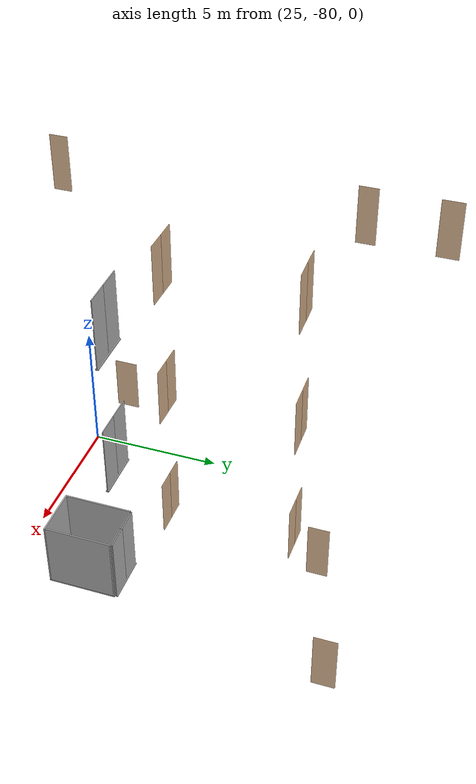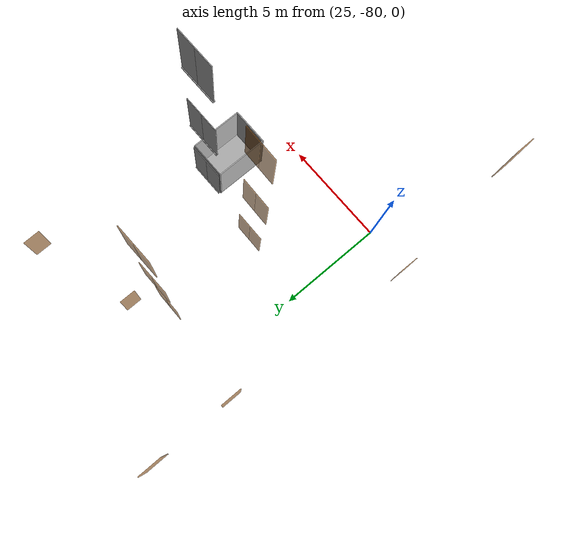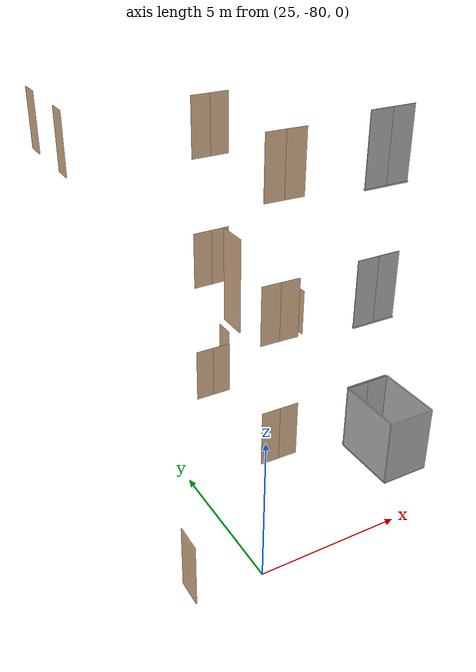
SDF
<sdf version="1.7">
 <world name="sim_world">
  <model name="p20">
   <pose>28.24031880536875 -70.70868270569765 0.0 0 0 3.141592653589793</pose>
   <link name="right">
    <pose>0.3696779354685793 0 1.11 0 0 0</pose>
    <visual name="right_visual">
     <geometry><box><size>0.7293558709371586 0.03 2.2</size></box></geometry>
     <material>
      <ambient>0.5 0.25 0 0.6</ambient>
      <diffuse>0.5 0.25 0 0.6</diffuse>
      <pbr><metal><metalness>0.0</metalness></metal></pbr>
     </material>
    </visual>
    <collision name="right_collision">
     <geometry><box><size>0.7293558709371586 0.03 2.2</size></box></geometry>
     <surface><contact><collide_bitmask>0x02</collide_bitmask></contact></surface>
    </collision>
    <inertial>
     <mass>50.0</mass>
     <inertia><ixx>20.17041666666667</ixx><iyy>22.38316661029376</iyy><izz>2.2202499436270884</izz></inertia>
    </inertial>
   </link>
   <joint name="right_joint" type="revolute">
    <parent>world</parent>
    <child>right</child>
    <axis><xyz>0 0 -1</xyz><limit><lower>0</lower><upper>1.57</upper></limit></axis>
    <pose>0.3696779354685793 0 0 0 0 0</pose>
   </joint>
   <link name="left">
    <pose>-0.3696779354685793 0 1.11 0 0 0</pose>
    <visual name="left_visual">
     <geometry><box><size>0.7293558709371586 0.03 2.2</size></box></geometry>
     <material>
      <ambient>0.5 0.25 0 0.6</ambient>
      <diffuse>0.5 0.25 0 0.6</diffuse>
      <pbr><metal><metalness>0.0</metalness></metal></pbr>
     </material>
    </visual>
    <collision name="left_collision">
     <geometry><box><size>0.7293558709371586 0.03 2.2</size></box></geometry>
     <surface><contact><collide_bitmask>0x02</collide_bitmask></contact></surface>
    </collision>
    <inertial>
     <mass>50.0</mass>
     <inertia><ixx>20.17041666666667</ixx><iyy>22.38316661029376</iyy><izz>2.2202499436270884</izz></inertia>
    </inertial>
   </link>
   <joint name="left_joint" type="revolute">
    <parent>world</parent>
    <child>left</child>
    <axis><xyz>0 0 -1</xyz><limit><lower>-1.57</lower><upper>0</upper></limit></axis>
    <pose>-0.3696779354685793 0 0 0 0 0</pose>
   </joint>
   <plugin name="register_component" filename="libregister_component.so">
    <component name="Door">
     <v_max_door>0.5</v_max_door>
     <a_max_door>0.3</a_max_door>
     <a_nom_door>0.15</a_nom_door>
     <dx_min_door>0.01</dx_min_door>
     <f_max_door>500.0</f_max_door>
     <ros_interface>true</ros_interface>
     <door name="p20" type="DoubleSwingDoor" left_joint_name="left_joint" right_joint_name="right_joint"/>
    </component>
   </plugin>
  </model>
  <model name="p21">
   <pose>29.38755147995617 -69.5233733815295 0.0 0 0 1.5707963267948966</pose>
   <link name="right">
    <pose>0 0 1.11 0 0 0</pose>
    <visual name="right_visual">
     <geometry><box><size>0.7783988622559315 0.03 2.2</size></box></geometry>
     <material>
      <ambient>0.5 0.25 0 0.6</ambient>
      <diffuse>0.5 0.25 0 0.6</diffuse>
      <pbr><metal><metalness>0.0</metalness></metal></pbr>
     </material>
    </visual>
    <collision name="right_collision">
     <geometry><box><size>0.7783988622559315 0.03 2.2</size></box></geometry>
     <surface><contact><collide_bitmask>0x02</collide_bitmask></contact></surface>
    </collision>
    <inertial>
     <mass>50.0</mass>
     <inertia><ixx>20.17041666666667</ixx><iyy>22.69126995317221</iyy><izz>2.528353286505536</izz></inertia>
    </inertial>
   </link>
   <joint name="right_joint" type="revolute">
    <parent>world</parent>
    <child>right</child>
    <axis><xyz>0 0 -1</xyz><limit><lower>0</lower><upper>1.57</upper></limit></axis>
    <pose>0.39419943112796574 0 0 0 0 0</pose>
   </joint>
   <plugin name="register_component" filename="libregister_component.so">
    <component name="Door">
     <v_max_door>0.5</v_max_door>
     <a_max_door>0.3</a_max_door>
     <a_nom_door>0.15</a_nom_door>
     <dx_min_door>0.01</dx_min_door>
     <f_max_door>500.0</f_max_door>
     <ros_interface>true</ros_interface>
     <door name="p21" type="SwingDoor" left_joint_name="empty_joint" right_joint_name="right_joint"/>
    </component>
   </plugin>
  </model>
  <model name="p22">
   <pose>34.09194542383932 -67.93720926787358 0.0 0 0 1.5769575132323284</pose>
   <link name="right">
    <pose>0 0 1.11 0 0 0</pose>
    <visual name="right_visual">
     <geometry><box><size>0.8195467216974657 0.03 2.2</size></box></geometry>
     <material>
      <ambient>0.5 0.25 0 0.6</ambient>
      <diffuse>0.5 0.25 0 0.6</diffuse>
      <pbr><metal><metalness>0.0</metalness></metal></pbr>
     </material>
    </visual>
    <collision name="right_collision">
     <geometry><box><size>0.8195467216974657 0.03 2.2</size></box></geometry>
     <surface><contact><collide_bitmask>0x02</collide_bitmask></contact></surface>
    </collision>
    <inertial>
     <mass>50.0</mass>
     <inertia><ixx>20.17041666666667</ixx><iyy>22.96523678768777</iyy><izz>2.8023201210210975</izz></inertia>
    </inertial>
   </link>
   <joint name="right_joint" type="revolute">
    <parent>world</parent>
    <child>right</child>
    <axis><xyz>0 0 1</xyz><limit><lower>0</lower><upper>1.57</upper></limit></axis>
    <pose>0.41477336084873284 0 0 0 0 0</pose>
   </joint>
   <plugin name="register_component" filename="libregister_component.so">
    <component name="Door">
     <v_max_door>0.5</v_max_door>
     <a_max_door>0.3</a_max_door>
     <a_nom_door>0.15</a_nom_door>
     <dx_min_door>0.01</dx_min_door>
     <f_max_door>500.0</f_max_door>
     <ros_interface>true</ros_interface>
     <door name="p22" type="SwingDoor" left_joint_name="empty_joint" right_joint_name="right_joint"/>
    </component>
   </plugin>
  </model>
  <model name="p30">
   <pose>28.38806998311163 -75.47850804420615 0.0 0 0 -0.00943139745782586</pose>
   <link name="right">
    <pose>0.36697211509706684 0 1.11 0 0 0</pose>
    <visual name="right_visual">
     <geometry><box><size>0.7239442301941337 0.03 2.2</size></box></geometry>
     <material>
      <ambient>0.5 0.25 0 0.6</ambient>
      <diffuse>0.5 0.25 0 0.6</diffuse>
      <pbr><metal><metalness>0.0</metalness></metal></pbr>
     </material>
    </visual>
    <collision name="right_collision">
     <geometry><box><size>0.7239442301941337 0.03 2.2</size></box></geometry>
     <surface><contact><collide_bitmask>0x02</collide_bitmask></contact></surface>
    </collision>
    <inertial>
     <mass>50.0</mass>
     <inertia><ixx>20.17041666666667</ixx><iyy>22.350396868464074</iyy><izz>2.1874802017974035</izz></inertia>
    </inertial>
   </link>
   <joint name="right_joint" type="revolute">
    <parent>world</parent>
    <child>right</child>
    <axis><xyz>0 0 -1</xyz><limit><lower>0</lower><upper>1.57</upper></limit></axis>
    <pose>0.36697211509706684 0 0 0 0 0</pose>
   </joint>
   <link name="left">
    <pose>-0.36697211509706684 0 1.11 0 0 0</pose>
    <visual name="left_visual">
     <geometry><box><size>0.7239442301941337 0.03 2.2</size></box></geometry>
     <material>
      <ambient>0.5 0.25 0 0.6</ambient>
      <diffuse>0.5 0.25 0 0.6</diffuse>
      <pbr><metal><metalness>0.0</metalness></metal></pbr>
     </material>
    </visual>
    <collision name="left_collision">
     <geometry><box><size>0.7239442301941337 0.03 2.2</size></box></geometry>
     <surface><contact><collide_bitmask>0x02</collide_bitmask></contact></surface>
    </collision>
    <inertial>
     <mass>50.0</mass>
     <inertia><ixx>20.17041666666667</ixx><iyy>22.350396868464074</iyy><izz>2.1874802017974035</izz></inertia>
    </inertial>
   </link>
   <joint name="left_joint" type="revolute">
    <parent>world</parent>
    <child>left</child>
    <axis><xyz>0 0 -1</xyz><limit><lower>-1.57</lower><upper>0</upper></limit></axis>
    <pose>-0.36697211509706684 0 0 0 0 0</pose>
   </joint>
   <plugin name="register_component" filename="libregister_component.so">
    <component name="Door">
     <v_max_door>0.5</v_max_door>
     <a_max_door>0.3</a_max_door>
     <a_nom_door>0.15</a_nom_door>
     <dx_min_door>0.01</dx_min_door>
     <f_max_door>500.0</f_max_door>
     <ros_interface>true</ros_interface>
     <door name="p30" type="DoubleSwingDoor" left_joint_name="left_joint" right_joint_name="right_joint"/>
    </component>
   </plugin>
  </model>
  <model name="p31">
   <pose>22.722648958549392 -79.61439661047086 0.0 0 0 1.5606615386686578</pose>
   <link name="right">
    <pose>0 0 1.11 0 0 0</pose>
    <visual name="right_visual">
     <geometry><box><size>0.904330978076463 0.03 2.2</size></box></geometry>
     <material>
      <ambient>0.5 0.25 0 0.6</ambient>
      <diffuse>0.5 0.25 0 0.6</diffuse>
      <pbr><metal><metalness>0.0</metalness></metal></pbr>
     </material>
    </visual>
    <collision name="right_collision">
     <geometry><box><size>0.904330978076463 0.03 2.2</size></box></geometry>
     <surface><contact><collide_bitmask>0x02</collide_bitmask></contact></surface>
    </collision>
    <inertial>
     <mass>50.0</mass>
     <inertia><ixx>20.17041666666667</ixx><iyy>23.574227157953054</iyy><izz>3.4113104912863847</izz></inertia>
    </inertial>
   </link>
   <joint name="right_joint" type="revolute">
    <parent>world</parent>
    <child>right</child>
    <axis><xyz>0 0 -1</xyz><limit><lower>0</lower><upper>1.57</upper></limit></axis>
    <pose>0.4571654890382315 0 0 0 0 0</pose>
   </joint>
   <plugin name="register_component" filename="libregister_component.so">
    <component name="Door">
     <v_max_door>0.5</v_max_door>
     <a_max_door>0.3</a_max_door>
     <a_nom_door>0.15</a_nom_door>
     <dx_min_door>0.01</dx_min_door>
     <f_max_door>500.0</f_max_door>
     <ros_interface>true</ros_interface>
     <door name="p31" type="SwingDoor" left_joint_name="empty_joint" right_joint_name="right_joint"/>
    </component>
   </plugin>
  </model>
  <model name="puerta30">
   <pose>28.253965480010393 -70.6309433870361 5.0 0 0 -3.119041826627135</pose>
   <link name="right">
    <pose>0.3698967666298497 0 1.11 0 0 0</pose>
    <visual name="right_visual">
     <geometry><box><size>0.7297935332596994 0.03 2.2</size></box></geometry>
     <material>
      <ambient>0.5 0.25 0 0.6</ambient>
      <diffuse>0.5 0.25 0 0.6</diffuse>
      <pbr><metal><metalness>0.0</metalness></metal></pbr>
     </material>
    </visual>
    <collision name="right_collision">
     <geometry><box><size>0.7297935332596994 0.03 2.2</size></box></geometry>
     <surface><contact><collide_bitmask>0x02</collide_bitmask></contact></surface>
    </collision>
    <inertial>
     <mass>50.0</mass>
     <inertia><ixx>20.17041666666667</ixx><iyy>22.385827504948654</iyy><izz>2.2229108382819835</izz></inertia>
    </inertial>
   </link>
   <joint name="right_joint" type="revolute">
    <parent>world</parent>
    <child>right</child>
    <axis><xyz>0 0 -1</xyz><limit><lower>0</lower><upper>1.57</upper></limit></axis>
    <pose>0.3698967666298497 0 0 0 0 0</pose>
   </joint>
   <link name="left">
    <pose>-0.3698967666298497 0 1.11 0 0 0</pose>
    <visual name="left_visual">
     <geometry><box><size>0.7297935332596994 0.03 2.2</size></box></geometry>
     <material>
      <ambient>0.5 0.25 0 0.6</ambient>
      <diffuse>0.5 0.25 0 0.6</diffuse>
      <pbr><metal><metalness>0.0</metalness></metal></pbr>
     </material>
    </visual>
    <collision name="left_collision">
     <geometry><box><size>0.7297935332596994 0.03 2.2</size></box></geometry>
     <surface><contact><collide_bitmask>0x02</collide_bitmask></contact></surface>
    </collision>
    <inertial>
     <mass>50.0</mass>
     <inertia><ixx>20.17041666666667</ixx><iyy>22.385827504948654</iyy><izz>2.2229108382819835</izz></inertia>
    </inertial>
   </link>
   <joint name="left_joint" type="revolute">
    <parent>world</parent>
    <child>left</child>
    <axis><xyz>0 0 -1</xyz><limit><lower>-1.57</lower><upper>0</upper></limit></axis>
    <pose>-0.3698967666298497 0 0 0 0 0</pose>
   </joint>
   <plugin name="register_component" filename="libregister_component.so">
    <component name="Door">
     <v_max_door>0.5</v_max_door>
     <a_max_door>0.3</a_max_door>
     <a_nom_door>0.15</a_nom_door>
     <dx_min_door>0.01</dx_min_door>
     <f_max_door>500.0</f_max_door>
     <ros_interface>true</ros_interface>
     <door name="puerta30" type="DoubleSwingDoor" left_joint_name="left_joint" right_joint_name="right_joint"/>
    </component>
   </plugin>
  </model>
  <model name="puerta31">
   <pose>28.23796392504 -75.49561463981098 5.0 0 0 -0.024892835621303313</pose>
   <link name="right">
    <pose>0.3614109252643454 0 1.11 0 0 0</pose>
    <visual name="right_visual">
     <geometry><box><size>0.7128218505286907 0.03 2.2</size></box></geometry>
     <material>
      <ambient>0.5 0.25 0 0.6</ambient>
      <diffuse>0.5 0.25 0 0.6</diffuse>
      <pbr><metal><metalness>0.0</metalness></metal></pbr>
     </material>
    </visual>
    <collision name="right_collision">
     <geometry><box><size>0.7128218505286907 0.03 2.2</size></box></geometry>
     <surface><contact><collide_bitmask>0x02</collide_bitmask></contact></surface>
    </collision>
    <inertial>
     <mass>50.0</mass>
     <inertia><ixx>20.17041666666667</ixx><iyy>22.28381246079645</iyy><izz>2.1208957941297797</izz></inertia>
    </inertial>
   </link>
   <joint name="right_joint" type="revolute">
    <parent>world</parent>
    <child>right</child>
    <axis><xyz>0 0 -1</xyz><limit><lower>0</lower><upper>1.57</upper></limit></axis>
    <pose>0.3614109252643454 0 0 0 0 0</pose>
   </joint>
   <link name="left">
    <pose>-0.3614109252643454 0 1.11 0 0 0</pose>
    <visual name="left_visual">
     <geometry><box><size>0.7128218505286907 0.03 2.2</size></box></geometry>
     <material>
      <ambient>0.5 0.25 0 0.6</ambient>
      <diffuse>0.5 0.25 0 0.6</diffuse>
      <pbr><metal><metalness>0.0</metalness></metal></pbr>
     </material>
    </visual>
    <collision name="left_collision">
     <geometry><box><size>0.7128218505286907 0.03 2.2</size></box></geometry>
     <surface><contact><collide_bitmask>0x02</collide_bitmask></contact></surface>
    </collision>
    <inertial>
     <mass>50.0</mass>
     <inertia><ixx>20.17041666666667</ixx><iyy>22.28381246079645</iyy><izz>2.1208957941297797</izz></inertia>
    </inertial>
   </link>
   <joint name="left_joint" type="revolute">
    <parent>world</parent>
    <child>left</child>
    <axis><xyz>0 0 -1</xyz><limit><lower>-1.57</lower><upper>0</upper></limit></axis>
    <pose>-0.3614109252643454 0 0 0 0 0</pose>
   </joint>
   <plugin name="register_component" filename="libregister_component.so">
    <component name="Door">
     <v_max_door>0.5</v_max_door>
     <a_max_door>0.3</a_max_door>
     <a_nom_door>0.15</a_nom_door>
     <dx_min_door>0.01</dx_min_door>
     <f_max_door>500.0</f_max_door>
     <ros_interface>true</ros_interface>
     <door name="puerta31" type="DoubleSwingDoor" left_joint_name="left_joint" right_joint_name="right_joint"/>
    </component>
   </plugin>
  </model>
  <model name="puerta116">
   <pose>28.253852579309445 -70.63140079941434 10.0 0 0 -3.119040116150256</pose>
   <link name="right">
    <pose>0.3699010898375656 0 1.11 0 0 0</pose>
    <visual name="right_visual">
     <geometry><box><size>0.7298021796751312 0.03 2.2</size></box></geometry>
     <material>
      <ambient>0.5 0.25 0 0.6</ambient>
      <diffuse>0.5 0.25 0 0.6</diffuse>
      <pbr><metal><metalness>0.0</metalness></metal></pbr>
     </material>
    </visual>
    <collision name="right_collision">
     <geometry><box><size>0.7298021796751312 0.03 2.2</size></box></geometry>
     <surface><contact><collide_bitmask>0x02</collide_bitmask></contact></surface>
    </collision>
    <inertial>
     <mass>50.0</mass>
     <inertia><ixx>20.17041666666667</ixx><iyy>22.385880089410723</iyy><izz>2.222963422744052</izz></inertia>
    </inertial>
   </link>
   <joint name="right_joint" type="revolute">
    <parent>world</parent>
    <child>right</child>
    <axis><xyz>0 0 -1</xyz><limit><lower>0</lower><upper>1.57</upper></limit></axis>
    <pose>0.3699010898375656 0 0 0 0 0</pose>
   </joint>
   <link name="left">
    <pose>-0.3699010898375656 0 1.11 0 0 0</pose>
    <visual name="left_visual">
     <geometry><box><size>0.7298021796751312 0.03 2.2</size></box></geometry>
     <material>
      <ambient>0.5 0.25 0 0.6</ambient>
      <diffuse>0.5 0.25 0 0.6</diffuse>
      <pbr><metal><metalness>0.0</metalness></metal></pbr>
     </material>
    </visual>
    <collision name="left_collision">
     <geometry><box><size>0.7298021796751312 0.03 2.2</size></box></geometry>
     <surface><contact><collide_bitmask>0x02</collide_bitmask></contact></surface>
    </collision>
    <inertial>
     <mass>50.0</mass>
     <inertia><ixx>20.17041666666667</ixx><iyy>22.385880089410723</iyy><izz>2.222963422744052</izz></inertia>
    </inertial>
   </link>
   <joint name="left_joint" type="revolute">
    <parent>world</parent>
    <child>left</child>
    <axis><xyz>0 0 -1</xyz><limit><lower>-1.57</lower><upper>0</upper></limit></axis>
    <pose>-0.3699010898375656 0 0 0 0 0</pose>
   </joint>
   <plugin name="register_component" filename="libregister_component.so">
    <component name="Door">
     <v_max_door>0.5</v_max_door>
     <a_max_door>0.3</a_max_door>
     <a_nom_door>0.15</a_nom_door>
     <dx_min_door>0.01</dx_min_door>
     <f_max_door>500.0</f_max_door>
     <ros_interface>true</ros_interface>
     <door name="puerta116" type="DoubleSwingDoor" left_joint_name="left_joint" right_joint_name="right_joint"/>
    </component>
   </plugin>
  </model>
  <model name="puerta117">
   <pose>28.237859158324174 -75.49612893591424 10.0 0 0 -0.02489112514442452</pose>
   <link name="right">
    <pose>0.3614151492928882 0 1.11 0 0 0</pose>
    <visual name="right_visual">
     <geometry><box><size>0.7128302985857764 0.03 2.2</size></box></geometry>
     <material>
      <ambient>0.5 0.25 0 0.6</ambient>
      <diffuse>0.5 0.25 0 0.6</diffuse>
      <pbr><metal><metalness>0.0</metalness></metal></pbr>
     </material>
    </visual>
    <collision name="right_collision">
     <geometry><box><size>0.7128302985857764 0.03 2.2</size></box></geometry>
     <surface><contact><collide_bitmask>0x02</collide_bitmask></contact></surface>
    </collision>
    <inertial>
     <mass>50.0</mass>
     <inertia><ixx>20.17041666666667</ixx><iyy>22.2838626440912</iyy><izz>2.12094597742453</izz></inertia>
    </inertial>
   </link>
   <joint name="right_joint" type="revolute">
    <parent>world</parent>
    <child>right</child>
    <axis><xyz>0 0 -1</xyz><limit><lower>0</lower><upper>1.57</upper></limit></axis>
    <pose>0.3614151492928882 0 0 0 0 0</pose>
   </joint>
   <link name="left">
    <pose>-0.3614151492928882 0 1.11 0 0 0</pose>
    <visual name="left_visual">
     <geometry><box><size>0.7128302985857764 0.03 2.2</size></box></geometry>
     <material>
      <ambient>0.5 0.25 0 0.6</ambient>
      <diffuse>0.5 0.25 0 0.6</diffuse>
      <pbr><metal><metalness>0.0</metalness></metal></pbr>
     </material>
    </visual>
    <collision name="left_collision">
     <geometry><box><size>0.7128302985857764 0.03 2.2</size></box></geometry>
     <surface><contact><collide_bitmask>0x02</collide_bitmask></contact></surface>
    </collision>
    <inertial>
     <mass>50.0</mass>
     <inertia><ixx>20.17041666666667</ixx><iyy>22.2838626440912</iyy><izz>2.12094597742453</izz></inertia>
    </inertial>
   </link>
   <joint name="left_joint" type="revolute">
    <parent>world</parent>
    <child>left</child>
    <axis><xyz>0 0 -1</xyz><limit><lower>-1.57</lower><upper>0</upper></limit></axis>
    <pose>-0.3614151492928882 0 0 0 0 0</pose>
   </joint>
   <plugin name="register_component" filename="libregister_component.so">
    <component name="Door">
     <v_max_door>0.5</v_max_door>
     <a_max_door>0.3</a_max_door>
     <a_nom_door>0.15</a_nom_door>
     <dx_min_door>0.01</dx_min_door>
     <f_max_door>500.0</f_max_door>
     <ros_interface>true</ros_interface>
     <door name="puerta117" type="DoubleSwingDoor" left_joint_name="left_joint" right_joint_name="right_joint"/>
    </component>
   </plugin>
  </model>
  <model name="puerta191">
   <pose>23.09528756313445 -70.01654095917024 10.0 0 0 -1.5706415577171917</pose>
   <link name="right">
    <pose>0 0 1.11 0 0 0</pose>
    <visual name="right_visual">
     <geometry><box><size>0.707458572029589 0.03 2.2</size></box></geometry>
     <material>
      <ambient>0.5 0.25 0 0.6</ambient>
      <diffuse>0.5 0.25 0 0.6</diffuse>
      <pbr><metal><metalness>0.0</metalness></metal></pbr>
     </material>
    </visual>
    <collision name="right_collision">
     <geometry><box><size>0.707458572029589 0.03 2.2</size></box></geometry>
     <surface><contact><collide_bitmask>0x02</collide_bitmask></contact></surface>
    </collision>
    <inertial>
     <mass>50.0</mass>
     <inertia><ixx>20.17041666666667</ixx><iyy>22.252073463075607</iyy><izz>2.089156796408938</izz></inertia>
    </inertial>
   </link>
   <joint name="right_joint" type="revolute">
    <parent>world</parent>
    <child>right</child>
    <axis><xyz>0 0 1</xyz><limit><lower>0</lower><upper>1.57</upper></limit></axis>
    <pose>0.3587292860147945 0 0 0 0 0</pose>
   </joint>
   <plugin name="register_component" filename="libregister_component.so">
    <component name="Door">
     <v_max_door>0.5</v_max_door>
     <a_max_door>0.3</a_max_door>
     <a_nom_door>0.15</a_nom_door>
     <dx_min_door>0.01</dx_min_door>
     <f_max_door>500.0</f_max_door>
     <ros_interface>true</ros_interface>
     <door name="puerta191" type="SwingDoor" left_joint_name="empty_joint" right_joint_name="right_joint"/>
    </component>
   </plugin>
  </model>
  <model name="puerta192">
   <pose>23.094842041128867 -67.13791682679607 10.0 0 0 -1.5706415577171886</pose>
   <link name="right">
    <pose>0 0 1.11 0 0 0</pose>
    <visual name="right_visual">
     <geometry><box><size>0.8067808679963837 0.03 2.2</size></box></geometry>
     <material>
      <ambient>0.5 0.25 0 0.6</ambient>
      <diffuse>0.5 0.25 0 0.6</diffuse>
      <pbr><metal><metalness>0.0</metalness></metal></pbr>
     </material>
    </visual>
    <collision name="right_collision">
     <geometry><box><size>0.8067808679963837 0.03 2.2</size></box></geometry>
     <surface><contact><collide_bitmask>0x02</collide_bitmask></contact></surface>
    </collision>
    <inertial>
     <mass>50.0</mass>
     <inertia><ixx>20.17041666666667</ixx><iyy>22.878730704020832</iyy><izz>2.71581403735416</izz></inertia>
    </inertial>
   </link>
   <joint name="right_joint" type="revolute">
    <parent>world</parent>
    <child>right</child>
    <axis><xyz>0 0 1</xyz><limit><lower>0</lower><upper>1.57</upper></limit></axis>
    <pose>0.40839043399819186 0 0 0 0 0</pose>
   </joint>
   <plugin name="register_component" filename="libregister_component.so">
    <component name="Door">
     <v_max_door>0.5</v_max_door>
     <a_max_door>0.3</a_max_door>
     <a_nom_door>0.15</a_nom_door>
     <dx_min_door>0.01</dx_min_door>
     <f_max_door>500.0</f_max_door>
     <ros_interface>true</ros_interface>
     <door name="puerta192" type="SwingDoor" left_joint_name="empty_joint" right_joint_name="right_joint"/>
    </component>
   </plugin>
  </model>
  <model name="puerta195">
   <pose>23.092152731131623 -81.49707886946723 10.0 0 0 -1.5699500383705802</pose>
   <link name="right">
    <pose>0 0 1.11 0 0 0</pose>
    <visual name="right_visual">
     <geometry><box><size>0.6970575697927808 0.03 2.2</size></box></geometry>
     <material>
      <ambient>0.5 0.25 0 0.6</ambient>
      <diffuse>0.5 0.25 0 0.6</diffuse>
      <pbr><metal><metalness>0.0</metalness></metal></pbr>
     </material>
    </visual>
    <collision name="right_collision">
     <geometry><box><size>0.6970575697927808 0.03 2.2</size></box></geometry>
     <surface><contact><collide_bitmask>0x02</collide_bitmask></contact></surface>
    </collision>
    <inertial>
     <mass>50.0</mass>
     <inertia><ixx>20.17041666666667</ixx><iyy>22.191205231689242</iyy><izz>2.028288565022573</izz></inertia>
    </inertial>
   </link>
   <joint name="right_joint" type="revolute">
    <parent>world</parent>
    <child>right</child>
    <axis><xyz>0 0 1</xyz><limit><lower>0</lower><upper>1.57</upper></limit></axis>
    <pose>0.3535287848963904 0 0 0 0 0</pose>
   </joint>
   <plugin name="register_component" filename="libregister_component.so">
    <component name="Door">
     <v_max_door>0.5</v_max_door>
     <a_max_door>0.3</a_max_door>
     <a_nom_door>0.15</a_nom_door>
     <dx_min_door>0.01</dx_min_door>
     <f_max_door>500.0</f_max_door>
     <ros_interface>true</ros_interface>
     <door name="puerta195" type="SwingDoor" left_joint_name="empty_joint" right_joint_name="right_joint"/>
    </component>
   </plugin>
  </model>
  <model name="ShaftDoor_left_lab_lift_L0_left_lab_lift_door">
   <pose>31.838505760783477 -75.86955478651261 0.0 0 0 0.0</pose>
   <link name="right_door">
    <pose>0.425 0 1.25 0 0 0</pose>
    <visual name="right_door_visual">
     <geometry><box><size>0.85 0.03 2.5</size></box></geometry>
     <material>
      <ambient>0.5 0.5 0.5 1</ambient>
      <diffuse>0.7 0.7 0.7 1</diffuse>
      <specular>0.6 0.6 0.6 1</specular>
      <emissive>0.1 0.1 0.1 1</emissive>
     </material>
    </visual>
    <collision name="right_door_collision">
     <geometry><box><size>0.85 0.03 2.5</size></box></geometry>
     <surface><contact><collide_bitmask>0x02</collide_bitmask></contact></surface>
    </collision>
   </link>
   <link name="left_door">
    <pose>-0.425 0 1.25 0 0 0</pose>
    <visual name="left_door_visual">
     <geometry><box><size>0.85 0.03 2.5</size></box></geometry>
     <material>
      <ambient>0.5 0.5 0.5 1</ambient>
      <diffuse>0.7 0.7 0.7 1</diffuse>
      <specular>0.6 0.6 0.6 1</specular>
      <emissive>0.1 0.1 0.1 1</emissive>
     </material>
    </visual>
    <collision name="left_door_collision">
     <geometry><box><size>0.85 0.03 2.5</size></box></geometry>
     <surface><contact><collide_bitmask>0x02</collide_bitmask></contact></surface>
    </collision>
   </link>
   <joint name="right_joint" type="prismatic">
    <parent>world</parent>
    <child>right_door</child>
    <axis><xyz>1 0 0</xyz><limit><lower>0</lower><upper>0.85</upper></limit></axis>
   </joint>
   <joint name="left_joint" type="prismatic">
    <parent>world</parent>
    <child>left_door</child>
    <axis><xyz>1 0 0</xyz><limit><lower>-0.85</lower><upper>0</upper></limit></axis>
   </joint>
   <link name="ramp">
    <pose>0 0 -0.025 0 0 0</pose>
    <visual name="ramp_visual">
     <geometry><box><size>1.7 0.1 0.05</size></box></geometry>
     <material>
      <ambient>0.5 0.5 0.5 1</ambient>
      <diffuse>0.7 0.7 0.7 1</diffuse>
      <specular>0.6 0.6 0.6 1</specular>
      <emissive>0.1 0.1 0.1 1</emissive>
     </material>
    </visual>
    <collision name="ramp_collision">
     <geometry><box><size>1.7 0.1 0.05</size></box></geometry>
     <surface><contact><collide_bitmask>0x02</collide_bitmask></contact></surface>
    </collision>
   </link>
   <joint name="ramp_joint" type="fixed"><parent>world</parent><child>ramp</child></joint>
   <plugin name="register_component" filename="libregister_component.so">
    <component name="Door">
     <v_max_door>0.3</v_max_door>
     <a_max_door>0.2</a_max_door>
     <a_nom_door>0.1</a_nom_door>
     <dx_min_door>0.0001</dx_min_door>
     <f_max_door>35.0</f_max_door>
     <door left_joint_name="left_joint" name="ShaftDoor_left_lab_lift_L0_left_lab_lift_door" right_joint_name="right_joint" type="DoubleSlidingDoor"/>
    </component>
   </plugin>
  </model>
  <model name="ShaftDoor_left_lab_lift_L1_left_lab_lift_door">
   <pose>31.838505760783477 -75.86955478651261 5.0 0 0 0.0</pose>
   <link name="right_door">
    <pose>0.425 0 1.25 0 0 0</pose>
    <visual name="right_door_visual">
     <geometry><box><size>0.85 0.03 2.5</size></box></geometry>
     <material>
      <ambient>0.5 0.5 0.5 1</ambient>
      <diffuse>0.7 0.7 0.7 1</diffuse>
      <specular>0.6 0.6 0.6 1</specular>
      <emissive>0.1 0.1 0.1 1</emissive>
     </material>
    </visual>
    <collision name="right_door_collision">
     <geometry><box><size>0.85 0.03 2.5</size></box></geometry>
     <surface><contact><collide_bitmask>0x02</collide_bitmask></contact></surface>
    </collision>
   </link>
   <link name="left_door">
    <pose>-0.425 0 1.25 0 0 0</pose>
    <visual name="left_door_visual">
     <geometry><box><size>0.85 0.03 2.5</size></box></geometry>
     <material>
      <ambient>0.5 0.5 0.5 1</ambient>
      <diffuse>0.7 0.7 0.7 1</diffuse>
      <specular>0.6 0.6 0.6 1</specular>
      <emissive>0.1 0.1 0.1 1</emissive>
     </material>
    </visual>
    <collision name="left_door_collision">
     <geometry><box><size>0.85 0.03 2.5</size></box></geometry>
     <surface><contact><collide_bitmask>0x02</collide_bitmask></contact></surface>
    </collision>
   </link>
   <joint name="right_joint" type="prismatic">
    <parent>world</parent>
    <child>right_door</child>
    <axis><xyz>1 0 0</xyz><limit><lower>0</lower><upper>0.85</upper></limit></axis>
   </joint>
   <joint name="left_joint" type="prismatic">
    <parent>world</parent>
    <child>left_door</child>
    <axis><xyz>1 0 0</xyz><limit><lower>-0.85</lower><upper>0</upper></limit></axis>
   </joint>
   <link name="ramp">
    <pose>0 0 -0.025 0 0 0</pose>
    <visual name="ramp_visual">
     <geometry><box><size>1.7 0.1 0.05</size></box></geometry>
     <material>
      <ambient>0.5 0.5 0.5 1</ambient>
      <diffuse>0.7 0.7 0.7 1</diffuse>
      <specular>0.6 0.6 0.6 1</specular>
      <emissive>0.1 0.1 0.1 1</emissive>
     </material>
    </visual>
    <collision name="ramp_collision">
     <geometry><box><size>1.7 0.1 0.05</size></box></geometry>
     <surface><contact><collide_bitmask>0x02</collide_bitmask></contact></surface>
    </collision>
   </link>
   <joint name="ramp_joint" type="fixed"><parent>world</parent><child>ramp</child></joint>
   <plugin name="register_component" filename="libregister_component.so">
    <component name="Door">
     <v_max_door>0.3</v_max_door>
     <a_max_door>0.2</a_max_door>
     <a_nom_door>0.1</a_nom_door>
     <dx_min_door>0.0001</dx_min_door>
     <f_max_door>35.0</f_max_door>
     <door left_joint_name="left_joint" name="ShaftDoor_left_lab_lift_L1_left_lab_lift_door" right_joint_name="right_joint" type="DoubleSlidingDoor"/>
    </component>
   </plugin>
  </model>
  <model name="ShaftDoor_left_lab_lift_L2_left_lab_lift_door">
   <pose>31.838505760783477 -75.86955478651261 10.0 0 0 0.0</pose>
   <link name="right_door">
    <pose>0.425 0 1.25 0 0 0</pose>
    <visual name="right_door_visual">
     <geometry><box><size>0.85 0.03 2.5</size></box></geometry>
     <material>
      <ambient>0.5 0.5 0.5 1</ambient>
      <diffuse>0.7 0.7 0.7 1</diffuse>
      <specular>0.6 0.6 0.6 1</specular>
      <emissive>0.1 0.1 0.1 1</emissive>
     </material>
    </visual>
    <collision name="right_door_collision">
     <geometry><box><size>0.85 0.03 2.5</size></box></geometry>
     <surface><contact><collide_bitmask>0x02</collide_bitmask></contact></surface>
    </collision>
   </link>
   <link name="left_door">
    <pose>-0.425 0 1.25 0 0 0</pose>
    <visual name="left_door_visual">
     <geometry><box><size>0.85 0.03 2.5</size></box></geometry>
     <material>
      <ambient>0.5 0.5 0.5 1</ambient>
      <diffuse>0.7 0.7 0.7 1</diffuse>
      <specular>0.6 0.6 0.6 1</specular>
      <emissive>0.1 0.1 0.1 1</emissive>
     </material>
    </visual>
    <collision name="left_door_collision">
     <geometry><box><size>0.85 0.03 2.5</size></box></geometry>
     <surface><contact><collide_bitmask>0x02</collide_bitmask></contact></surface>
    </collision>
   </link>
   <joint name="right_joint" type="prismatic">
    <parent>world</parent>
    <child>right_door</child>
    <axis><xyz>1 0 0</xyz><limit><lower>0</lower><upper>0.85</upper></limit></axis>
   </joint>
   <joint name="left_joint" type="prismatic">
    <parent>world</parent>
    <child>left_door</child>
    <axis><xyz>1 0 0</xyz><limit><lower>-0.85</lower><upper>0</upper></limit></axis>
   </joint>
   <link name="ramp">
    <pose>0 0 -0.025 0 0 0</pose>
    <visual name="ramp_visual">
     <geometry><box><size>1.7 0.1 0.05</size></box></geometry>
     <material>
      <ambient>0.5 0.5 0.5 1</ambient>
      <diffuse>0.7 0.7 0.7 1</diffuse>
      <specular>0.6 0.6 0.6 1</specular>
      <emissive>0.1 0.1 0.1 1</emissive>
     </material>
    </visual>
    <collision name="ramp_collision">
     <geometry><box><size>1.7 0.1 0.05</size></box></geometry>
     <surface><contact><collide_bitmask>0x02</collide_bitmask></contact></surface>
    </collision>
   </link>
   <joint name="ramp_joint" type="fixed"><parent>world</parent><child>ramp</child></joint>
   <plugin name="register_component" filename="libregister_component.so">
    <component name="Door">
     <v_max_door>0.3</v_max_door>
     <a_max_door>0.2</a_max_door>
     <a_nom_door>0.1</a_nom_door>
     <dx_min_door>0.0001</dx_min_door>
     <f_max_door>35.0</f_max_door>
     <door left_joint_name="left_joint" name="ShaftDoor_left_lab_lift_L2_left_lab_lift_door" right_joint_name="right_joint" type="DoubleSlidingDoor"/>
    </component>
   </plugin>
  </model>
  <model name="left_lab_lift">
   <link name="platform">
    <inertial><mass>1200</mass><inertia><ixx>324.25</ixx><iyy>625.25</iyy><izz>949.0</izz></inertia></inertial>
    <visual name="floor_visual">
     <pose>0 0 -0.025 0 0 0</pose>
     <geometry><box><size>1.8 2.5 0.05</size></box></geometry>
     <material>
      <ambient>0.5 0.5 0.5 1</ambient>
      <diffuse>0.7 0.7 0.7 1</diffuse>
      <specular>0.6 0.6 0.6 1</specular>
      <emissive>0.1 0.1 0.1 1</emissive>
     </material>
    </visual>
    <collision name="floor_collision">
     <pose>0 0 -0.025 0 0 0</pose>
     <geometry><box><size>1.8 2.5 0.05</size></box></geometry>
     <surface><contact><collide_bitmask>0x01</collide_bitmask></contact></surface>
    </collision>
    <visual name="frontwall1_visual">
     <pose>-0.875 1.225 1.25 0 0 0</pose>
     <geometry><box><size>0.050000000000000044 0.05 2.5</size></box></geometry>
     <material>
      <ambient>0.5 0.5 0.5 1</ambient>
      <diffuse>0.7 0.7 0.7 1</diffuse>
      <specular>0.6 0.6 0.6 1</specular>
      <emissive>0.1 0.1 0.1 1</emissive>
     </material>
    </visual>
    <collision name="frontwall1_collision">
     <pose>-0.875 1.225 1.25 0 0 0</pose>
     <geometry><box><size>0.050000000000000044 0.05 2.5</size></box></geometry>
     <surface><contact><collide_bitmask>0x01</collide_bitmask></contact></surface>
    </collision>
    <visual name="frontwall2_visual">
     <pose>0.875 1.225 1.25 0 0 0</pose>
     <geometry><box><size>0.050000000000000044 0.05 2.5</size></box></geometry>
     <material>
      <ambient>0.5 0.5 0.5 1</ambient>
      <diffuse>0.7 0.7 0.7 1</diffuse>
      <specular>0.6 0.6 0.6 1</specular>
      <emissive>0.1 0.1 0.1 1</emissive>
     </material>
    </visual>
    <collision name="frontwall2_collision">
     <pose>0.875 1.225 1.25 0 0 0</pose>
     <geometry><box><size>0.050000000000000044 0.05 2.5</size></box></geometry>
     <surface><contact><collide_bitmask>0x01</collide_bitmask></contact></surface>
    </collision>
    <visual name="backwall1_visual">
     <pose>0.0 -1.225 1.25 0 0 0</pose>
     <geometry><box><size>1.8 0.05 2.5</size></box></geometry>
     <material>
      <ambient>0.5 0.5 0.5 1</ambient>
      <diffuse>0.7 0.7 0.7 1</diffuse>
      <specular>0.6 0.6 0.6 1</specular>
      <emissive>0.1 0.1 0.1 1</emissive>
     </material>
    </visual>
    <collision name="backwall1_collision">
     <pose>0.0 -1.225 1.25 0 0 0</pose>
     <geometry><box><size>1.8 0.05 2.5</size></box></geometry>
     <surface><contact><collide_bitmask>0x01</collide_bitmask></contact></surface>
    </collision>
    <visual name="leftwall1_visual">
     <pose>-0.875 0.0 1.25 0 0 1.5707963267948966</pose>
     <geometry><box><size>2.4 0.05 2.5</size></box></geometry>
     <material>
      <ambient>0.5 0.5 0.5 1</ambient>
      <diffuse>0.7 0.7 0.7 1</diffuse>
      <specular>0.6 0.6 0.6 1</specular>
      <emissive>0.1 0.1 0.1 1</emissive>
     </material>
    </visual>
    <collision name="leftwall1_collision">
     <pose>-0.875 0.0 1.25 0 0 1.5707963267948966</pose>
     <geometry><box><size>2.4 0.05 2.5</size></box></geometry>
     <surface><contact><collide_bitmask>0x01</collide_bitmask></contact></surface>
    </collision>
    <visual name="rightwall1_visual">
     <pose>0.875 0.0 1.25 0 0 1.5707963267948966</pose>
     <geometry><box><size>2.4 0.05 2.5</size></box></geometry>
     <material>
      <ambient>0.5 0.5 0.5 1</ambient>
      <diffuse>0.7 0.7 0.7 1</diffuse>
      <specular>0.6 0.6 0.6 1</specular>
      <emissive>0.1 0.1 0.1 1</emissive>
     </material>
    </visual>
    <collision name="rightwall1_collision">
     <pose>0.875 0.0 1.25 0 0 1.5707963267948966</pose>
     <geometry><box><size>2.4 0.05 2.5</size></box></geometry>
     <surface><contact><collide_bitmask>0x01</collide_bitmask></contact></surface>
    </collision>
   </link>
   <joint name="cabin_joint" type="prismatic">
    <parent>world</parent>
    <child>platform</child>
    <axis><xyz>0 0 1</xyz></axis>
   </joint>
   <model name="CabinDoor_left_lab_lift_left_lab_lift_door">
    <pose>0.0 1.225 0 0 0 0.0</pose>
    <link name="right_door">
     <pose>0.425 0 1.25 0 0 0</pose>
     <visual name="right_door_visual">
      <geometry><box><size>0.85 0.03 2.5</size></box></geometry>
      <material>
       <ambient>0.5 0.5 0.5 1</ambient>
       <diffuse>0.7 0.7 0.7 1</diffuse>
       <specular>0.6 0.6 0.6 1</specular>
       <emissive>0.1 0.1 0.1 1</emissive>
      </material>
     </visual>
     <collision name="right_door_collision">
      <geometry><box><size>0.85 0.03 2.5</size></box></geometry>
      <surface><contact><collide_bitmask>0x02</collide_bitmask></contact></surface>
     </collision>
    </link>
    <link name="left_door">
     <pose>-0.425 0 1.25 0 0 0</pose>
     <visual name="left_door_visual">
      <geometry><box><size>0.85 0.03 2.5</size></box></geometry>
      <material>
       <ambient>0.5 0.5 0.5 1</ambient>
       <diffuse>0.7 0.7 0.7 1</diffuse>
       <specular>0.6 0.6 0.6 1</specular>
       <emissive>0.1 0.1 0.1 1</emissive>
      </material>
     </visual>
     <collision name="left_door_collision">
      <geometry><box><size>0.85 0.03 2.5</size></box></geometry>
      <surface><contact><collide_bitmask>0x02</collide_bitmask></contact></surface>
     </collision>
    </link>
    <plugin name="register_component" filename="libregister_component.so">
     <component name="Door">
      <v_max_door>0.3</v_max_door>
      <a_max_door>0.2</a_max_door>
      <a_nom_door>0.1</a_nom_door>
      <dx_min_door>0.0001</dx_min_door>
      <f_max_door>35.0</f_max_door>
      <door left_joint_name="CabinDoor_left_lab_lift_left_lab_lift_door_left_joint" name="CabinDoor_left_lab_lift_left_lab_lift_door" right_joint_name="CabinDoor_left_lab_lift_left_lab_lift_door_right_joint" type="DoubleSlidingDoor"/>
     </component>
    </plugin>
   </model>
   <joint name="CabinDoor_left_lab_lift_left_lab_lift_door_right_joint" type="prismatic">
    <parent>platform</parent>
    <child>CabinDoor_left_lab_lift_left_lab_lift_door::right_door</child>
    <axis><xyz>1 0 0</xyz><limit><lower>0</lower><upper>0.85</upper></limit></axis>
   </joint>
   <joint name="CabinDoor_left_lab_lift_left_lab_lift_door_left_joint" type="prismatic">
    <parent>platform</parent>
    <child>CabinDoor_left_lab_lift_left_lab_lift_door::left_door</child>
    <axis><xyz>1 0 0</xyz><limit><lower>-0.85</lower><upper>0</upper></limit></axis>
   </joint>
   <plugin name="register_component" filename="libregister_component.so">
    <component name="Lift">
     <lift_name>left_lab_lift</lift_name>
     <floor name="L0" elevation="0.0">
      <door_pair cabin_door="CabinDoor_left_lab_lift_left_lab_lift_door" shaft_door="ShaftDoor_left_lab_lift_L0_left_lab_lift_door"/>
     </floor>
     <floor name="L1" elevation="5.0">
      <door_pair cabin_door="CabinDoor_left_lab_lift_left_lab_lift_door" shaft_door="ShaftDoor_left_lab_lift_L1_left_lab_lift_door"/>
     </floor>
     <floor name="L2" elevation="10.0">
      <door_pair cabin_door="CabinDoor_left_lab_lift_left_lab_lift_door" shaft_door="ShaftDoor_left_lab_lift_L2_left_lab_lift_door"/>
     </floor>
     <initial_floor>L1</initial_floor>
     <v_max_cabin>2.0</v_max_cabin>
     <a_max_cabin>1.2</a_max_cabin>
     <a_nom_cabin>1.0</a_nom_cabin>
     <dx_min_cabin>0.001</dx_min_cabin>
     <f_max_cabin>25323.0</f_max_cabin>
     <cabin_joint_name>cabin_joint</cabin_joint_name>
    </component>
   </plugin>
   <pose>31.838505760783477 -77.1695547865126 0 0 0 0.0</pose>
  </model>
 </world>
</sdf>
